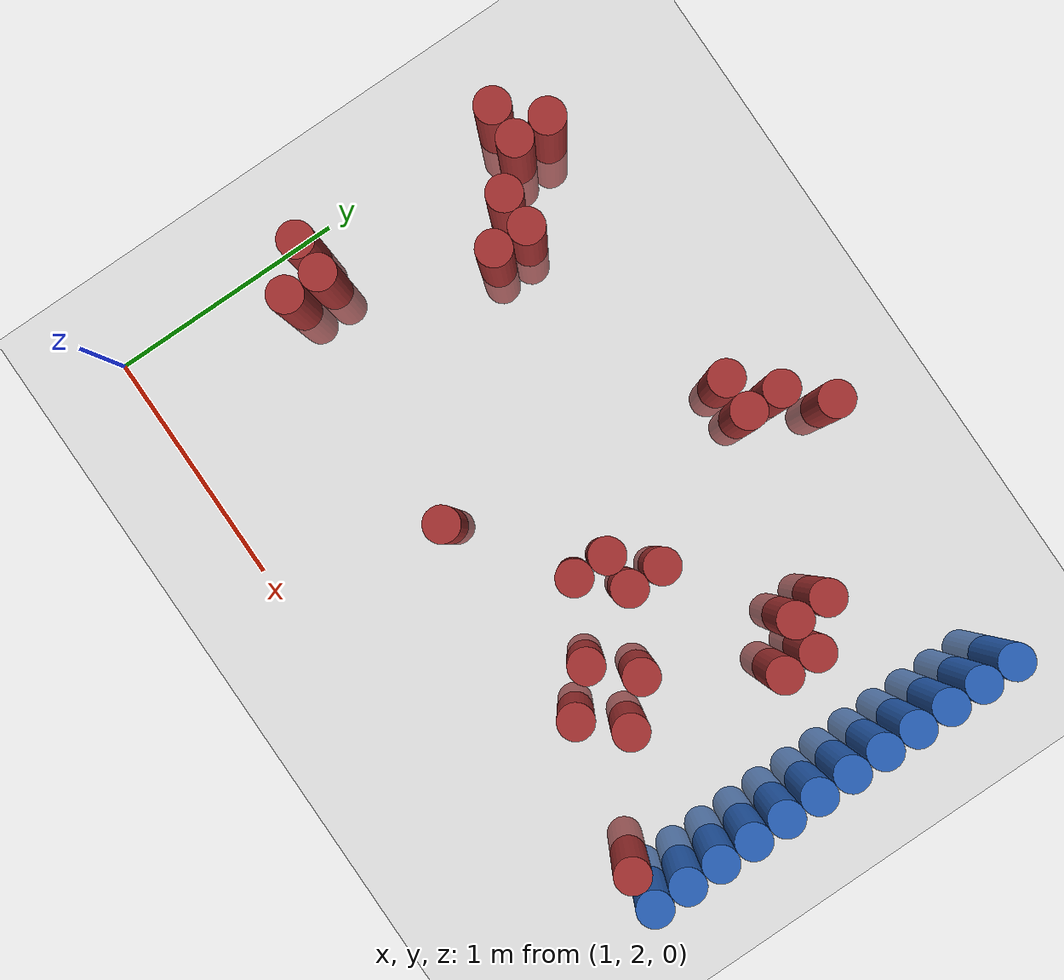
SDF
<sdf version="1.6">
 <world name="default">
  <model name="ground_plane">
   <static>1</static>
   <link name="link">
    <collision name="collision">
     <geometry><plane><normal>0 0 1</normal><size>100 100</size></plane></geometry>
     <surface><friction><ode><mu>100</mu><mu2>50</mu2></ode></friction></surface>
    </collision>
    <visual name="visual">
     <cast_shadows>0</cast_shadows>
     <geometry><plane><normal>0 0 1</normal><size>100 100</size></plane></geometry>
     <material>
      <script><uri>file://media/materials/scripts/gazebo.material</uri><name>Gazebo/Grey</name></script>
     </material>
    </visual>
   </link>
  </model>
  <model name="unit_cylinder_148">
   <static>1</static>
   <pose>3.925000 2.575000 0.000000 0.000000 0.000000 0.000000</pose>
   <link name="link">
    <inertial>
     <mass>1</mass>
     <inertia><ixx>0.145833</ixx><ixy>0</ixy><ixz>0</ixz><iyy>0.145833</iyy><iyz>0</iyz><izz>0.125</izz></inertia>
    </inertial>
    <collision name="collision">
     <geometry><cylinder><radius>0.075000</radius><length>1.5</length></cylinder></geometry>
    </collision>
    <visual name="visual">
     <geometry><cylinder><radius>0.075000</radius><length>1.5</length></cylinder></geometry>
     <material>
      <ambient>0.152000 0.379000 0.720000 1</ambient>
      <diffuse>0.152000 0.379000 0.720000 1</diffuse>
     </material>
     <material>
      <script><name>Gazebo/Grey</name><uri>file://media/materials/scripts/gazebo.material</uri></script>
     </material>
    </visual>
   </link>
  </model>
  <model name="unit_cylinder_150">
   <static>1</static>
   <pose>3.925000 2.725000 0.000000 0.000000 0.000000 0.000000</pose>
   <link name="link">
    <inertial>
     <mass>1</mass>
     <inertia><ixx>0.145833</ixx><ixy>0</ixy><ixz>0</ixz><iyy>0.145833</iyy><iyz>0</iyz><izz>0.125</izz></inertia>
    </inertial>
    <collision name="collision">
     <geometry><cylinder><radius>0.075000</radius><length>1.5</length></cylinder></geometry>
    </collision>
    <visual name="visual">
     <geometry><cylinder><radius>0.075000</radius><length>1.5</length></cylinder></geometry>
     <material>
      <ambient>0.152000 0.379000 0.720000 1</ambient>
      <diffuse>0.152000 0.379000 0.720000 1</diffuse>
     </material>
     <material>
      <script><name>Gazebo/Grey</name><uri>file://media/materials/scripts/gazebo.material</uri></script>
     </material>
    </visual>
   </link>
  </model>
  <model name="unit_cylinder_152">
   <static>1</static>
   <pose>3.925000 2.875000 0.000000 0.000000 0.000000 0.000000</pose>
   <link name="link">
    <inertial>
     <mass>1</mass>
     <inertia><ixx>0.145833</ixx><ixy>0</ixy><ixz>0</ixz><iyy>0.145833</iyy><iyz>0</iyz><izz>0.125</izz></inertia>
    </inertial>
    <collision name="collision">
     <geometry><cylinder><radius>0.075000</radius><length>1.5</length></cylinder></geometry>
    </collision>
    <visual name="visual">
     <geometry><cylinder><radius>0.075000</radius><length>1.5</length></cylinder></geometry>
     <material>
      <ambient>0.152000 0.379000 0.720000 1</ambient>
      <diffuse>0.152000 0.379000 0.720000 1</diffuse>
     </material>
     <material>
      <script><name>Gazebo/Grey</name><uri>file://media/materials/scripts/gazebo.material</uri></script>
     </material>
    </visual>
   </link>
  </model>
  <model name="unit_cylinder_154">
   <static>1</static>
   <pose>3.925000 3.025000 0.000000 0.000000 0.000000 0.000000</pose>
   <link name="link">
    <inertial>
     <mass>1</mass>
     <inertia><ixx>0.145833</ixx><ixy>0</ixy><ixz>0</ixz><iyy>0.145833</iyy><iyz>0</iyz><izz>0.125</izz></inertia>
    </inertial>
    <collision name="collision">
     <geometry><cylinder><radius>0.075000</radius><length>1.5</length></cylinder></geometry>
    </collision>
    <visual name="visual">
     <geometry><cylinder><radius>0.075000</radius><length>1.5</length></cylinder></geometry>
     <material>
      <ambient>0.152000 0.379000 0.720000 1</ambient>
      <diffuse>0.152000 0.379000 0.720000 1</diffuse>
     </material>
     <material>
      <script><name>Gazebo/Grey</name><uri>file://media/materials/scripts/gazebo.material</uri></script>
     </material>
    </visual>
   </link>
  </model>
  <model name="unit_cylinder_156">
   <static>1</static>
   <pose>3.925000 3.175000 0.000000 0.000000 0.000000 0.000000</pose>
   <link name="link">
    <inertial>
     <mass>1</mass>
     <inertia><ixx>0.145833</ixx><ixy>0</ixy><ixz>0</ixz><iyy>0.145833</iyy><iyz>0</iyz><izz>0.125</izz></inertia>
    </inertial>
    <collision name="collision">
     <geometry><cylinder><radius>0.075000</radius><length>1.5</length></cylinder></geometry>
    </collision>
    <visual name="visual">
     <geometry><cylinder><radius>0.075000</radius><length>1.5</length></cylinder></geometry>
     <material>
      <ambient>0.152000 0.379000 0.720000 1</ambient>
      <diffuse>0.152000 0.379000 0.720000 1</diffuse>
     </material>
     <material>
      <script><name>Gazebo/Grey</name><uri>file://media/materials/scripts/gazebo.material</uri></script>
     </material>
    </visual>
   </link>
  </model>
  <model name="unit_cylinder_158">
   <static>1</static>
   <pose>3.925000 3.325000 0.000000 0.000000 0.000000 0.000000</pose>
   <link name="link">
    <inertial>
     <mass>1</mass>
     <inertia><ixx>0.145833</ixx><ixy>0</ixy><ixz>0</ixz><iyy>0.145833</iyy><iyz>0</iyz><izz>0.125</izz></inertia>
    </inertial>
    <collision name="collision">
     <geometry><cylinder><radius>0.075000</radius><length>1.5</length></cylinder></geometry>
    </collision>
    <visual name="visual">
     <geometry><cylinder><radius>0.075000</radius><length>1.5</length></cylinder></geometry>
     <material>
      <ambient>0.152000 0.379000 0.720000 1</ambient>
      <diffuse>0.152000 0.379000 0.720000 1</diffuse>
     </material>
     <material>
      <script><name>Gazebo/Grey</name><uri>file://media/materials/scripts/gazebo.material</uri></script>
     </material>
    </visual>
   </link>
  </model>
  <model name="unit_cylinder_160">
   <static>1</static>
   <pose>3.925000 3.475000 0.000000 0.000000 0.000000 0.000000</pose>
   <link name="link">
    <inertial>
     <mass>1</mass>
     <inertia><ixx>0.145833</ixx><ixy>0</ixy><ixz>0</ixz><iyy>0.145833</iyy><iyz>0</iyz><izz>0.125</izz></inertia>
    </inertial>
    <collision name="collision">
     <geometry><cylinder><radius>0.075000</radius><length>1.5</length></cylinder></geometry>
    </collision>
    <visual name="visual">
     <geometry><cylinder><radius>0.075000</radius><length>1.5</length></cylinder></geometry>
     <material>
      <ambient>0.152000 0.379000 0.720000 1</ambient>
      <diffuse>0.152000 0.379000 0.720000 1</diffuse>
     </material>
     <material>
      <script><name>Gazebo/Grey</name><uri>file://media/materials/scripts/gazebo.material</uri></script>
     </material>
    </visual>
   </link>
  </model>
  <model name="unit_cylinder_162">
   <static>1</static>
   <pose>3.925000 3.625000 0.000000 0.000000 0.000000 0.000000</pose>
   <link name="link">
    <inertial>
     <mass>1</mass>
     <inertia><ixx>0.145833</ixx><ixy>0</ixy><ixz>0</ixz><iyy>0.145833</iyy><iyz>0</iyz><izz>0.125</izz></inertia>
    </inertial>
    <collision name="collision">
     <geometry><cylinder><radius>0.075000</radius><length>1.5</length></cylinder></geometry>
    </collision>
    <visual name="visual">
     <geometry><cylinder><radius>0.075000</radius><length>1.5</length></cylinder></geometry>
     <material>
      <ambient>0.152000 0.379000 0.720000 1</ambient>
      <diffuse>0.152000 0.379000 0.720000 1</diffuse>
     </material>
     <material>
      <script><name>Gazebo/Grey</name><uri>file://media/materials/scripts/gazebo.material</uri></script>
     </material>
    </visual>
   </link>
  </model>
  <model name="unit_cylinder_164">
   <static>1</static>
   <pose>3.925000 3.775000 0.000000 0.000000 0.000000 0.000000</pose>
   <link name="link">
    <inertial>
     <mass>1</mass>
     <inertia><ixx>0.145833</ixx><ixy>0</ixy><ixz>0</ixz><iyy>0.145833</iyy><iyz>0</iyz><izz>0.125</izz></inertia>
    </inertial>
    <collision name="collision">
     <geometry><cylinder><radius>0.075000</radius><length>1.5</length></cylinder></geometry>
    </collision>
    <visual name="visual">
     <geometry><cylinder><radius>0.075000</radius><length>1.5</length></cylinder></geometry>
     <material>
      <ambient>0.152000 0.379000 0.720000 1</ambient>
      <diffuse>0.152000 0.379000 0.720000 1</diffuse>
     </material>
     <material>
      <script><name>Gazebo/Grey</name><uri>file://media/materials/scripts/gazebo.material</uri></script>
     </material>
    </visual>
   </link>
  </model>
  <model name="unit_cylinder_166">
   <static>1</static>
   <pose>3.925000 3.925000 0.000000 0.000000 0.000000 0.000000</pose>
   <link name="link">
    <inertial>
     <mass>1</mass>
     <inertia><ixx>0.145833</ixx><ixy>0</ixy><ixz>0</ixz><iyy>0.145833</iyy><iyz>0</iyz><izz>0.125</izz></inertia>
    </inertial>
    <collision name="collision">
     <geometry><cylinder><radius>0.075000</radius><length>1.5</length></cylinder></geometry>
    </collision>
    <visual name="visual">
     <geometry><cylinder><radius>0.075000</radius><length>1.5</length></cylinder></geometry>
     <material>
      <ambient>0.152000 0.379000 0.720000 1</ambient>
      <diffuse>0.152000 0.379000 0.720000 1</diffuse>
     </material>
     <material>
      <script><name>Gazebo/Grey</name><uri>file://media/materials/scripts/gazebo.material</uri></script>
     </material>
    </visual>
   </link>
  </model>
  <model name="unit_cylinder_168">
   <static>1</static>
   <pose>3.925000 4.075000 0.000000 0.000000 0.000000 0.000000</pose>
   <link name="link">
    <inertial>
     <mass>1</mass>
     <inertia><ixx>0.145833</ixx><ixy>0</ixy><ixz>0</ixz><iyy>0.145833</iyy><iyz>0</iyz><izz>0.125</izz></inertia>
    </inertial>
    <collision name="collision">
     <geometry><cylinder><radius>0.075000</radius><length>1.5</length></cylinder></geometry>
    </collision>
    <visual name="visual">
     <geometry><cylinder><radius>0.075000</radius><length>1.5</length></cylinder></geometry>
     <material>
      <ambient>0.152000 0.379000 0.720000 1</ambient>
      <diffuse>0.152000 0.379000 0.720000 1</diffuse>
     </material>
     <material>
      <script><name>Gazebo/Grey</name><uri>file://media/materials/scripts/gazebo.material</uri></script>
     </material>
    </visual>
   </link>
  </model>
  <model name="unit_cylinder_170">
   <static>1</static>
   <pose>3.925000 4.225000 0.000000 0.000000 0.000000 0.000000</pose>
   <link name="link">
    <inertial>
     <mass>1</mass>
     <inertia><ixx>0.145833</ixx><ixy>0</ixy><ixz>0</ixz><iyy>0.145833</iyy><iyz>0</iyz><izz>0.125</izz></inertia>
    </inertial>
    <collision name="collision">
     <geometry><cylinder><radius>0.075000</radius><length>1.5</length></cylinder></geometry>
    </collision>
    <visual name="visual">
     <geometry><cylinder><radius>0.075000</radius><length>1.5</length></cylinder></geometry>
     <material>
      <ambient>0.152000 0.379000 0.720000 1</ambient>
      <diffuse>0.152000 0.379000 0.720000 1</diffuse>
     </material>
     <material>
      <script><name>Gazebo/Grey</name><uri>file://media/materials/scripts/gazebo.material</uri></script>
     </material>
    </visual>
   </link>
  </model>
  <model name="unit_cylinder_411">
   <static>1</static>
   <pose>1.075000 2.875000 0.000000 0.000000 0.000000 0.000000</pose>
   <link name="link">
    <inertial>
     <mass>1</mass>
     <inertia><ixx>0.145833</ixx><ixy>0</ixy><ixz>0</ixz><iyy>0.145833</iyy><iyz>0</iyz><izz>0.125</izz></inertia>
    </inertial>
    <collision name="collision">
     <geometry><cylinder><radius>0.075000</radius><length>1.5</length></cylinder></geometry>
    </collision>
    <visual name="visual">
     <geometry><cylinder><radius>0.075000</radius><length>1.5</length></cylinder></geometry>
     <material>
      <ambient>0.648000 0.192000 0.192000 1</ambient>
      <diffuse>0.648000 0.192000 0.192000 1</diffuse>
     </material>
     <material>
      <script><name>Gazebo/Grey</name><uri>file://media/materials/scripts/gazebo.material</uri></script>
     </material>
    </visual>
   </link>
  </model>
  <model name="unit_cylinder_412">
   <static>1</static>
   <pose>1.075000 3.775000 0.000000 0.000000 0.000000 0.000000</pose>
   <link name="link">
    <inertial>
     <mass>1</mass>
     <inertia><ixx>0.145833</ixx><ixy>0</ixy><ixz>0</ixz><iyy>0.145833</iyy><iyz>0</iyz><izz>0.125</izz></inertia>
    </inertial>
    <collision name="collision">
     <geometry><cylinder><radius>0.075000</radius><length>1.5</length></cylinder></geometry>
    </collision>
    <visual name="visual">
     <geometry><cylinder><radius>0.075000</radius><length>1.5</length></cylinder></geometry>
     <material>
      <ambient>0.648000 0.192000 0.192000 1</ambient>
      <diffuse>0.648000 0.192000 0.192000 1</diffuse>
     </material>
     <material>
      <script><name>Gazebo/Grey</name><uri>file://media/materials/scripts/gazebo.material</uri></script>
     </material>
    </visual>
   </link>
  </model>
  <model name="unit_cylinder_421">
   <static>1</static>
   <pose>1.225000 2.725000 0.000000 0.000000 0.000000 0.000000</pose>
   <link name="link">
    <inertial>
     <mass>1</mass>
     <inertia><ixx>0.145833</ixx><ixy>0</ixy><ixz>0</ixz><iyy>0.145833</iyy><iyz>0</iyz><izz>0.125</izz></inertia>
    </inertial>
    <collision name="collision">
     <geometry><cylinder><radius>0.075000</radius><length>1.5</length></cylinder></geometry>
    </collision>
    <visual name="visual">
     <geometry><cylinder><radius>0.075000</radius><length>1.5</length></cylinder></geometry>
     <material>
      <ambient>0.648000 0.192000 0.192000 1</ambient>
      <diffuse>0.648000 0.192000 0.192000 1</diffuse>
     </material>
     <material>
      <script><name>Gazebo/Grey</name><uri>file://media/materials/scripts/gazebo.material</uri></script>
     </material>
    </visual>
   </link>
  </model>
  <model name="unit_cylinder_422">
   <static>1</static>
   <pose>1.225000 2.875000 0.000000 0.000000 0.000000 0.000000</pose>
   <link name="link">
    <inertial>
     <mass>1</mass>
     <inertia><ixx>0.145833</ixx><ixy>0</ixy><ixz>0</ixz><iyy>0.145833</iyy><iyz>0</iyz><izz>0.125</izz></inertia>
    </inertial>
    <collision name="collision">
     <geometry><cylinder><radius>0.075000</radius><length>1.5</length></cylinder></geometry>
    </collision>
    <visual name="visual">
     <geometry><cylinder><radius>0.075000</radius><length>1.5</length></cylinder></geometry>
     <material>
      <ambient>0.648000 0.192000 0.192000 1</ambient>
      <diffuse>0.648000 0.192000 0.192000 1</diffuse>
     </material>
     <material>
      <script><name>Gazebo/Grey</name><uri>file://media/materials/scripts/gazebo.material</uri></script>
     </material>
    </visual>
   </link>
  </model>
  <model name="unit_cylinder_423">
   <static>1</static>
   <pose>1.225000 3.775000 0.000000 0.000000 0.000000 0.000000</pose>
   <link name="link">
    <inertial>
     <mass>1</mass>
     <inertia><ixx>0.145833</ixx><ixy>0</ixy><ixz>0</ixz><iyy>0.145833</iyy><iyz>0</iyz><izz>0.125</izz></inertia>
    </inertial>
    <collision name="collision">
     <geometry><cylinder><radius>0.075000</radius><length>1.5</length></cylinder></geometry>
    </collision>
    <visual name="visual">
     <geometry><cylinder><radius>0.075000</radius><length>1.5</length></cylinder></geometry>
     <material>
      <ambient>0.648000 0.192000 0.192000 1</ambient>
      <diffuse>0.648000 0.192000 0.192000 1</diffuse>
     </material>
     <material>
      <script><name>Gazebo/Grey</name><uri>file://media/materials/scripts/gazebo.material</uri></script>
     </material>
    </visual>
   </link>
  </model>
  <model name="unit_cylinder_424">
   <static>1</static>
   <pose>1.225000 3.925000 0.000000 0.000000 0.000000 0.000000</pose>
   <link name="link">
    <inertial>
     <mass>1</mass>
     <inertia><ixx>0.145833</ixx><ixy>0</ixy><ixz>0</ixz><iyy>0.145833</iyy><iyz>0</iyz><izz>0.125</izz></inertia>
    </inertial>
    <collision name="collision">
     <geometry><cylinder><radius>0.075000</radius><length>1.5</length></cylinder></geometry>
    </collision>
    <visual name="visual">
     <geometry><cylinder><radius>0.075000</radius><length>1.5</length></cylinder></geometry>
     <material>
      <ambient>0.648000 0.192000 0.192000 1</ambient>
      <diffuse>0.648000 0.192000 0.192000 1</diffuse>
     </material>
     <material>
      <script><name>Gazebo/Grey</name><uri>file://media/materials/scripts/gazebo.material</uri></script>
     </material>
    </visual>
   </link>
  </model>
  <model name="unit_cylinder_430">
   <static>1</static>
   <pose>1.375000 3.625000 0.000000 0.000000 0.000000 0.000000</pose>
   <link name="link">
    <inertial>
     <mass>1</mass>
     <inertia><ixx>0.145833</ixx><ixy>0</ixy><ixz>0</ixz><iyy>0.145833</iyy><iyz>0</iyz><izz>0.125</izz></inertia>
    </inertial>
    <collision name="collision">
     <geometry><cylinder><radius>0.075000</radius><length>1.5</length></cylinder></geometry>
    </collision>
    <visual name="visual">
     <geometry><cylinder><radius>0.075000</radius><length>1.5</length></cylinder></geometry>
     <material>
      <ambient>0.648000 0.192000 0.192000 1</ambient>
      <diffuse>0.648000 0.192000 0.192000 1</diffuse>
     </material>
     <material>
      <script><name>Gazebo/Grey</name><uri>file://media/materials/scripts/gazebo.material</uri></script>
     </material>
    </visual>
   </link>
  </model>
  <model name="unit_cylinder_434">
   <static>1</static>
   <pose>1.525000 3.475000 0.000000 0.000000 0.000000 0.000000</pose>
   <link name="link">
    <inertial>
     <mass>1</mass>
     <inertia><ixx>0.145833</ixx><ixy>0</ixy><ixz>0</ixz><iyy>0.145833</iyy><iyz>0</iyz><izz>0.125</izz></inertia>
    </inertial>
    <collision name="collision">
     <geometry><cylinder><radius>0.075000</radius><length>1.5</length></cylinder></geometry>
    </collision>
    <visual name="visual">
     <geometry><cylinder><radius>0.075000</radius><length>1.5</length></cylinder></geometry>
     <material>
      <ambient>0.648000 0.192000 0.192000 1</ambient>
      <diffuse>0.648000 0.192000 0.192000 1</diffuse>
     </material>
     <material>
      <script><name>Gazebo/Grey</name><uri>file://media/materials/scripts/gazebo.material</uri></script>
     </material>
    </visual>
   </link>
  </model>
  <model name="unit_cylinder_435">
   <static>1</static>
   <pose>1.525000 3.625000 0.000000 0.000000 0.000000 0.000000</pose>
   <link name="link">
    <inertial>
     <mass>1</mass>
     <inertia><ixx>0.145833</ixx><ixy>0</ixy><ixz>0</ixz><iyy>0.145833</iyy><iyz>0</iyz><izz>0.125</izz></inertia>
    </inertial>
    <collision name="collision">
     <geometry><cylinder><radius>0.075000</radius><length>1.5</length></cylinder></geometry>
    </collision>
    <visual name="visual">
     <geometry><cylinder><radius>0.075000</radius><length>1.5</length></cylinder></geometry>
     <material>
      <ambient>0.648000 0.192000 0.192000 1</ambient>
      <diffuse>0.648000 0.192000 0.192000 1</diffuse>
     </material>
     <material>
      <script><name>Gazebo/Grey</name><uri>file://media/materials/scripts/gazebo.material</uri></script>
     </material>
    </visual>
   </link>
  </model>
  <model name="unit_cylinder_446">
   <static>1</static>
   <pose>2.275000 2.725000 0.000000 0.000000 0.000000 0.000000</pose>
   <link name="link">
    <inertial>
     <mass>1</mass>
     <inertia><ixx>0.145833</ixx><ixy>0</ixy><ixz>0</ixz><iyy>0.145833</iyy><iyz>0</iyz><izz>0.125</izz></inertia>
    </inertial>
    <collision name="collision">
     <geometry><cylinder><radius>0.075000</radius><length>1.5</length></cylinder></geometry>
    </collision>
    <visual name="visual">
     <geometry><cylinder><radius>0.075000</radius><length>1.5</length></cylinder></geometry>
     <material>
      <ambient>0.648000 0.192000 0.192000 1</ambient>
      <diffuse>0.648000 0.192000 0.192000 1</diffuse>
     </material>
     <material>
      <script><name>Gazebo/Grey</name><uri>file://media/materials/scripts/gazebo.material</uri></script>
     </material>
    </visual>
   </link>
  </model>
  <model name="unit_cylinder_448">
   <static>1</static>
   <pose>2.425000 3.925000 0.000000 0.000000 0.000000 0.000000</pose>
   <link name="link">
    <inertial>
     <mass>1</mass>
     <inertia><ixx>0.145833</ixx><ixy>0</ixy><ixz>0</ixz><iyy>0.145833</iyy><iyz>0</iyz><izz>0.125</izz></inertia>
    </inertial>
    <collision name="collision">
     <geometry><cylinder><radius>0.075000</radius><length>1.5</length></cylinder></geometry>
    </collision>
    <visual name="visual">
     <geometry><cylinder><radius>0.075000</radius><length>1.5</length></cylinder></geometry>
     <material>
      <ambient>0.648000 0.192000 0.192000 1</ambient>
      <diffuse>0.648000 0.192000 0.192000 1</diffuse>
     </material>
     <material>
      <script><name>Gazebo/Grey</name><uri>file://media/materials/scripts/gazebo.material</uri></script>
     </material>
    </visual>
   </link>
  </model>
  <model name="unit_cylinder_453">
   <static>1</static>
   <pose>2.575000 3.925000 0.000000 0.000000 0.000000 0.000000</pose>
   <link name="link">
    <inertial>
     <mass>1</mass>
     <inertia><ixx>0.145833</ixx><ixy>0</ixy><ixz>0</ixz><iyy>0.145833</iyy><iyz>0</iyz><izz>0.125</izz></inertia>
    </inertial>
    <collision name="collision">
     <geometry><cylinder><radius>0.075000</radius><length>1.5</length></cylinder></geometry>
    </collision>
    <visual name="visual">
     <geometry><cylinder><radius>0.075000</radius><length>1.5</length></cylinder></geometry>
     <material>
      <ambient>0.648000 0.192000 0.192000 1</ambient>
      <diffuse>0.648000 0.192000 0.192000 1</diffuse>
     </material>
     <material>
      <script><name>Gazebo/Grey</name><uri>file://media/materials/scripts/gazebo.material</uri></script>
     </material>
    </visual>
   </link>
  </model>
  <model name="unit_cylinder_454">
   <static>1</static>
   <pose>2.575000 4.075000 0.000000 0.000000 0.000000 0.000000</pose>
   <link name="link">
    <inertial>
     <mass>1</mass>
     <inertia><ixx>0.145833</ixx><ixy>0</ixy><ixz>0</ixz><iyy>0.145833</iyy><iyz>0</iyz><izz>0.125</izz></inertia>
    </inertial>
    <collision name="collision">
     <geometry><cylinder><radius>0.075000</radius><length>1.5</length></cylinder></geometry>
    </collision>
    <visual name="visual">
     <geometry><cylinder><radius>0.075000</radius><length>1.5</length></cylinder></geometry>
     <material>
      <ambient>0.648000 0.192000 0.192000 1</ambient>
      <diffuse>0.648000 0.192000 0.192000 1</diffuse>
     </material>
     <material>
      <script><name>Gazebo/Grey</name><uri>file://media/materials/scripts/gazebo.material</uri></script>
     </material>
    </visual>
   </link>
  </model>
  <model name="unit_cylinder_458">
   <static>1</static>
   <pose>2.725000 3.025000 0.000000 0.000000 0.000000 0.000000</pose>
   <link name="link">
    <inertial>
     <mass>1</mass>
     <inertia><ixx>0.145833</ixx><ixy>0</ixy><ixz>0</ixz><iyy>0.145833</iyy><iyz>0</iyz><izz>0.125</izz></inertia>
    </inertial>
    <collision name="collision">
     <geometry><cylinder><radius>0.075000</radius><length>1.5</length></cylinder></geometry>
    </collision>
    <visual name="visual">
     <geometry><cylinder><radius>0.075000</radius><length>1.5</length></cylinder></geometry>
     <material>
      <ambient>0.648000 0.192000 0.192000 1</ambient>
      <diffuse>0.648000 0.192000 0.192000 1</diffuse>
     </material>
     <material>
      <script><name>Gazebo/Grey</name><uri>file://media/materials/scripts/gazebo.material</uri></script>
     </material>
    </visual>
   </link>
  </model>
  <model name="unit_cylinder_459">
   <static>1</static>
   <pose>2.725000 3.175000 0.000000 0.000000 0.000000 0.000000</pose>
   <link name="link">
    <inertial>
     <mass>1</mass>
     <inertia><ixx>0.145833</ixx><ixy>0</ixy><ixz>0</ixz><iyy>0.145833</iyy><iyz>0</iyz><izz>0.125</izz></inertia>
    </inertial>
    <collision name="collision">
     <geometry><cylinder><radius>0.075000</radius><length>1.5</length></cylinder></geometry>
    </collision>
    <visual name="visual">
     <geometry><cylinder><radius>0.075000</radius><length>1.5</length></cylinder></geometry>
     <material>
      <ambient>0.648000 0.192000 0.192000 1</ambient>
      <diffuse>0.648000 0.192000 0.192000 1</diffuse>
     </material>
     <material>
      <script><name>Gazebo/Grey</name><uri>file://media/materials/scripts/gazebo.material</uri></script>
     </material>
    </visual>
   </link>
  </model>
  <model name="unit_cylinder_460">
   <static>1</static>
   <pose>2.725000 4.225000 0.000000 0.000000 0.000000 0.000000</pose>
   <link name="link">
    <inertial>
     <mass>1</mass>
     <inertia><ixx>0.145833</ixx><ixy>0</ixy><ixz>0</ixz><iyy>0.145833</iyy><iyz>0</iyz><izz>0.125</izz></inertia>
    </inertial>
    <collision name="collision">
     <geometry><cylinder><radius>0.075000</radius><length>1.5</length></cylinder></geometry>
    </collision>
    <visual name="visual">
     <geometry><cylinder><radius>0.075000</radius><length>1.5</length></cylinder></geometry>
     <material>
      <ambient>0.648000 0.192000 0.192000 1</ambient>
      <diffuse>0.648000 0.192000 0.192000 1</diffuse>
     </material>
     <material>
      <script><name>Gazebo/Grey</name><uri>file://media/materials/scripts/gazebo.material</uri></script>
     </material>
    </visual>
   </link>
  </model>
  <model name="unit_cylinder_464">
   <static>1</static>
   <pose>2.875000 3.175000 0.000000 0.000000 0.000000 0.000000</pose>
   <link name="link">
    <inertial>
     <mass>1</mass>
     <inertia><ixx>0.145833</ixx><ixy>0</ixy><ixz>0</ixz><iyy>0.145833</iyy><iyz>0</iyz><izz>0.125</izz></inertia>
    </inertial>
    <collision name="collision">
     <geometry><cylinder><radius>0.075000</radius><length>1.5</length></cylinder></geometry>
    </collision>
    <visual name="visual">
     <geometry><cylinder><radius>0.075000</radius><length>1.5</length></cylinder></geometry>
     <material>
      <ambient>0.648000 0.192000 0.192000 1</ambient>
      <diffuse>0.648000 0.192000 0.192000 1</diffuse>
     </material>
     <material>
      <script><name>Gazebo/Grey</name><uri>file://media/materials/scripts/gazebo.material</uri></script>
     </material>
    </visual>
   </link>
  </model>
  <model name="unit_cylinder_465">
   <static>1</static>
   <pose>2.875000 3.325000 0.000000 0.000000 0.000000 0.000000</pose>
   <link name="link">
    <inertial>
     <mass>1</mass>
     <inertia><ixx>0.145833</ixx><ixy>0</ixy><ixz>0</ixz><iyy>0.145833</iyy><iyz>0</iyz><izz>0.125</izz></inertia>
    </inertial>
    <collision name="collision">
     <geometry><cylinder><radius>0.075000</radius><length>1.5</length></cylinder></geometry>
    </collision>
    <visual name="visual">
     <geometry><cylinder><radius>0.075000</radius><length>1.5</length></cylinder></geometry>
     <material>
      <ambient>0.648000 0.192000 0.192000 1</ambient>
      <diffuse>0.648000 0.192000 0.192000 1</diffuse>
     </material>
     <material>
      <script><name>Gazebo/Grey</name><uri>file://media/materials/scripts/gazebo.material</uri></script>
     </material>
    </visual>
   </link>
  </model>
  <model name="unit_cylinder_469">
   <static>1</static>
   <pose>3.025000 2.875000 0.000000 0.000000 0.000000 0.000000</pose>
   <link name="link">
    <inertial>
     <mass>1</mass>
     <inertia><ixx>0.145833</ixx><ixy>0</ixy><ixz>0</ixz><iyy>0.145833</iyy><iyz>0</iyz><izz>0.125</izz></inertia>
    </inertial>
    <collision name="collision">
     <geometry><cylinder><radius>0.075000</radius><length>1.5</length></cylinder></geometry>
    </collision>
    <visual name="visual">
     <geometry><cylinder><radius>0.075000</radius><length>1.5</length></cylinder></geometry>
     <material>
      <ambient>0.648000 0.192000 0.192000 1</ambient>
      <diffuse>0.648000 0.192000 0.192000 1</diffuse>
     </material>
     <material>
      <script><name>Gazebo/Grey</name><uri>file://media/materials/scripts/gazebo.material</uri></script>
     </material>
    </visual>
   </link>
  </model>
  <model name="unit_cylinder_471">
   <static>1</static>
   <pose>3.175000 2.725000 0.000000 0.000000 0.000000 0.000000</pose>
   <link name="link">
    <inertial>
     <mass>1</mass>
     <inertia><ixx>0.145833</ixx><ixy>0</ixy><ixz>0</ixz><iyy>0.145833</iyy><iyz>0</iyz><izz>0.125</izz></inertia>
    </inertial>
    <collision name="collision">
     <geometry><cylinder><radius>0.075000</radius><length>1.5</length></cylinder></geometry>
    </collision>
    <visual name="visual">
     <geometry><cylinder><radius>0.075000</radius><length>1.5</length></cylinder></geometry>
     <material>
      <ambient>0.648000 0.192000 0.192000 1</ambient>
      <diffuse>0.648000 0.192000 0.192000 1</diffuse>
     </material>
     <material>
      <script><name>Gazebo/Grey</name><uri>file://media/materials/scripts/gazebo.material</uri></script>
     </material>
    </visual>
   </link>
  </model>
  <model name="unit_cylinder_472">
   <static>1</static>
   <pose>3.175000 3.025000 0.000000 0.000000 0.000000 0.000000</pose>
   <link name="link">
    <inertial>
     <mass>1</mass>
     <inertia><ixx>0.145833</ixx><ixy>0</ixy><ixz>0</ixz><iyy>0.145833</iyy><iyz>0</iyz><izz>0.125</izz></inertia>
    </inertial>
    <collision name="collision">
     <geometry><cylinder><radius>0.075000</radius><length>1.5</length></cylinder></geometry>
    </collision>
    <visual name="visual">
     <geometry><cylinder><radius>0.075000</radius><length>1.5</length></cylinder></geometry>
     <material>
      <ambient>0.648000 0.192000 0.192000 1</ambient>
      <diffuse>0.648000 0.192000 0.192000 1</diffuse>
     </material>
     <material>
      <script><name>Gazebo/Grey</name><uri>file://media/materials/scripts/gazebo.material</uri></script>
     </material>
    </visual>
   </link>
  </model>
  <model name="unit_cylinder_478">
   <static>1</static>
   <pose>3.325000 2.875000 0.000000 0.000000 0.000000 0.000000</pose>
   <link name="link">
    <inertial>
     <mass>1</mass>
     <inertia><ixx>0.145833</ixx><ixy>0</ixy><ixz>0</ixz><iyy>0.145833</iyy><iyz>0</iyz><izz>0.125</izz></inertia>
    </inertial>
    <collision name="collision">
     <geometry><cylinder><radius>0.075000</radius><length>1.5</length></cylinder></geometry>
    </collision>
    <visual name="visual">
     <geometry><cylinder><radius>0.075000</radius><length>1.5</length></cylinder></geometry>
     <material>
      <ambient>0.648000 0.192000 0.192000 1</ambient>
      <diffuse>0.648000 0.192000 0.192000 1</diffuse>
     </material>
     <material>
      <script><name>Gazebo/Grey</name><uri>file://media/materials/scripts/gazebo.material</uri></script>
     </material>
    </visual>
   </link>
  </model>
  <model name="unit_cylinder_479">
   <static>1</static>
   <pose>3.325000 3.625000 0.000000 0.000000 0.000000 0.000000</pose>
   <link name="link">
    <inertial>
     <mass>1</mass>
     <inertia><ixx>0.145833</ixx><ixy>0</ixy><ixz>0</ixz><iyy>0.145833</iyy><iyz>0</iyz><izz>0.125</izz></inertia>
    </inertial>
    <collision name="collision">
     <geometry><cylinder><radius>0.075000</radius><length>1.5</length></cylinder></geometry>
    </collision>
    <visual name="visual">
     <geometry><cylinder><radius>0.075000</radius><length>1.5</length></cylinder></geometry>
     <material>
      <ambient>0.648000 0.192000 0.192000 1</ambient>
      <diffuse>0.648000 0.192000 0.192000 1</diffuse>
     </material>
     <material>
      <script><name>Gazebo/Grey</name><uri>file://media/materials/scripts/gazebo.material</uri></script>
     </material>
    </visual>
   </link>
  </model>
  <model name="unit_cylinder_480">
   <static>1</static>
   <pose>3.325000 3.775000 0.000000 0.000000 0.000000 0.000000</pose>
   <link name="link">
    <inertial>
     <mass>1</mass>
     <inertia><ixx>0.145833</ixx><ixy>0</ixy><ixz>0</ixz><iyy>0.145833</iyy><iyz>0</iyz><izz>0.125</izz></inertia>
    </inertial>
    <collision name="collision">
     <geometry><cylinder><radius>0.075000</radius><length>1.5</length></cylinder></geometry>
    </collision>
    <visual name="visual">
     <geometry><cylinder><radius>0.075000</radius><length>1.5</length></cylinder></geometry>
     <material>
      <ambient>0.648000 0.192000 0.192000 1</ambient>
      <diffuse>0.648000 0.192000 0.192000 1</diffuse>
     </material>
     <material>
      <script><name>Gazebo/Grey</name><uri>file://media/materials/scripts/gazebo.material</uri></script>
     </material>
    </visual>
   </link>
  </model>
  <model name="unit_cylinder_484">
   <static>1</static>
   <pose>3.475000 3.475000 0.000000 0.000000 0.000000 0.000000</pose>
   <link name="link">
    <inertial>
     <mass>1</mass>
     <inertia><ixx>0.145833</ixx><ixy>0</ixy><ixz>0</ixz><iyy>0.145833</iyy><iyz>0</iyz><izz>0.125</izz></inertia>
    </inertial>
    <collision name="collision">
     <geometry><cylinder><radius>0.075000</radius><length>1.5</length></cylinder></geometry>
    </collision>
    <visual name="visual">
     <geometry><cylinder><radius>0.075000</radius><length>1.5</length></cylinder></geometry>
     <material>
      <ambient>0.648000 0.192000 0.192000 1</ambient>
      <diffuse>0.648000 0.192000 0.192000 1</diffuse>
     </material>
     <material>
      <script><name>Gazebo/Grey</name><uri>file://media/materials/scripts/gazebo.material</uri></script>
     </material>
    </visual>
   </link>
  </model>
  <model name="unit_cylinder_485">
   <static>1</static>
   <pose>3.475000 3.625000 0.000000 0.000000 0.000000 0.000000</pose>
   <link name="link">
    <inertial>
     <mass>1</mass>
     <inertia><ixx>0.145833</ixx><ixy>0</ixy><ixz>0</ixz><iyy>0.145833</iyy><iyz>0</iyz><izz>0.125</izz></inertia>
    </inertial>
    <collision name="collision">
     <geometry><cylinder><radius>0.075000</radius><length>1.5</length></cylinder></geometry>
    </collision>
    <visual name="visual">
     <geometry><cylinder><radius>0.075000</radius><length>1.5</length></cylinder></geometry>
     <material>
      <ambient>0.648000 0.192000 0.192000 1</ambient>
      <diffuse>0.648000 0.192000 0.192000 1</diffuse>
     </material>
     <material>
      <script><name>Gazebo/Grey</name><uri>file://media/materials/scripts/gazebo.material</uri></script>
     </material>
    </visual>
   </link>
  </model>
  <model name="unit_cylinder_509">
   <static>1</static>
   <pose>3.775000 2.575000 0.000000 0.000000 0.000000 0.000000</pose>
   <link name="link">
    <inertial>
     <mass>1</mass>
     <inertia><ixx>0.145833</ixx><ixy>0</ixy><ixz>0</ixz><iyy>0.145833</iyy><iyz>0</iyz><izz>0.125</izz></inertia>
    </inertial>
    <collision name="collision">
     <geometry><cylinder><radius>0.075000</radius><length>1.5</length></cylinder></geometry>
    </collision>
    <visual name="visual">
     <geometry><cylinder><radius>0.075000</radius><length>1.5</length></cylinder></geometry>
     <material>
      <ambient>0.648000 0.192000 0.192000 1</ambient>
      <diffuse>0.648000 0.192000 0.192000 1</diffuse>
     </material>
     <material>
      <script><name>Gazebo/Grey</name><uri>file://media/materials/scripts/gazebo.material</uri></script>
     </material>
    </visual>
   </link>
  </model>
  <model name="unit_cylinder_545">
   <static>1</static>
   <pose>3.925000 2.575000 0.000000 0.000000 0.000000 0.000000</pose>
   <link name="link">
    <inertial>
     <mass>1</mass>
     <inertia><ixx>0.145833</ixx><ixy>0</ixy><ixz>0</ixz><iyy>0.145833</iyy><iyz>0</iyz><izz>0.125</izz></inertia>
    </inertial>
    <collision name="collision">
     <geometry><cylinder><radius>0.075000</radius><length>1.5</length></cylinder></geometry>
    </collision>
    <visual name="visual">
     <geometry><cylinder><radius>0.075000</radius><length>1.5</length></cylinder></geometry>
     <material>
      <ambient>0.152000 0.379000 0.720000 1</ambient>
      <diffuse>0.152000 0.379000 0.720000 1</diffuse>
     </material>
     <material>
      <script><name>Gazebo/Grey</name><uri>file://media/materials/scripts/gazebo.material</uri></script>
     </material>
    </visual>
   </link>
  </model>
  <model name="unit_cylinder_546">
   <static>1</static>
   <pose>3.925000 2.725000 0.000000 0.000000 0.000000 0.000000</pose>
   <link name="link">
    <inertial>
     <mass>1</mass>
     <inertia><ixx>0.145833</ixx><ixy>0</ixy><ixz>0</ixz><iyy>0.145833</iyy><iyz>0</iyz><izz>0.125</izz></inertia>
    </inertial>
    <collision name="collision">
     <geometry><cylinder><radius>0.075000</radius><length>1.5</length></cylinder></geometry>
    </collision>
    <visual name="visual">
     <geometry><cylinder><radius>0.075000</radius><length>1.5</length></cylinder></geometry>
     <material>
      <ambient>0.152000 0.379000 0.720000 1</ambient>
      <diffuse>0.152000 0.379000 0.720000 1</diffuse>
     </material>
     <material>
      <script><name>Gazebo/Grey</name><uri>file://media/materials/scripts/gazebo.material</uri></script>
     </material>
    </visual>
   </link>
  </model>
  <model name="unit_cylinder_547">
   <static>1</static>
   <pose>3.925000 2.875000 0.000000 0.000000 0.000000 0.000000</pose>
   <link name="link">
    <inertial>
     <mass>1</mass>
     <inertia><ixx>0.145833</ixx><ixy>0</ixy><ixz>0</ixz><iyy>0.145833</iyy><iyz>0</iyz><izz>0.125</izz></inertia>
    </inertial>
    <collision name="collision">
     <geometry><cylinder><radius>0.075000</radius><length>1.5</length></cylinder></geometry>
    </collision>
    <visual name="visual">
     <geometry><cylinder><radius>0.075000</radius><length>1.5</length></cylinder></geometry>
     <material>
      <ambient>0.152000 0.379000 0.720000 1</ambient>
      <diffuse>0.152000 0.379000 0.720000 1</diffuse>
     </material>
     <material>
      <script><name>Gazebo/Grey</name><uri>file://media/materials/scripts/gazebo.material</uri></script>
     </material>
    </visual>
   </link>
  </model>
  <model name="unit_cylinder_548">
   <static>1</static>
   <pose>3.925000 3.025000 0.000000 0.000000 0.000000 0.000000</pose>
   <link name="link">
    <inertial>
     <mass>1</mass>
     <inertia><ixx>0.145833</ixx><ixy>0</ixy><ixz>0</ixz><iyy>0.145833</iyy><iyz>0</iyz><izz>0.125</izz></inertia>
    </inertial>
    <collision name="collision">
     <geometry><cylinder><radius>0.075000</radius><length>1.5</length></cylinder></geometry>
    </collision>
    <visual name="visual">
     <geometry><cylinder><radius>0.075000</radius><length>1.5</length></cylinder></geometry>
     <material>
      <ambient>0.152000 0.379000 0.720000 1</ambient>
      <diffuse>0.152000 0.379000 0.720000 1</diffuse>
     </material>
     <material>
      <script><name>Gazebo/Grey</name><uri>file://media/materials/scripts/gazebo.material</uri></script>
     </material>
    </visual>
   </link>
  </model>
  <model name="unit_cylinder_549">
   <static>1</static>
   <pose>3.925000 3.175000 0.000000 0.000000 0.000000 0.000000</pose>
   <link name="link">
    <inertial>
     <mass>1</mass>
     <inertia><ixx>0.145833</ixx><ixy>0</ixy><ixz>0</ixz><iyy>0.145833</iyy><iyz>0</iyz><izz>0.125</izz></inertia>
    </inertial>
    <collision name="collision">
     <geometry><cylinder><radius>0.075000</radius><length>1.5</length></cylinder></geometry>
    </collision>
    <visual name="visual">
     <geometry><cylinder><radius>0.075000</radius><length>1.5</length></cylinder></geometry>
     <material>
      <ambient>0.152000 0.379000 0.720000 1</ambient>
      <diffuse>0.152000 0.379000 0.720000 1</diffuse>
     </material>
     <material>
      <script><name>Gazebo/Grey</name><uri>file://media/materials/scripts/gazebo.material</uri></script>
     </material>
    </visual>
   </link>
  </model>
  <model name="unit_cylinder_550">
   <static>1</static>
   <pose>3.925000 3.325000 0.000000 0.000000 0.000000 0.000000</pose>
   <link name="link">
    <inertial>
     <mass>1</mass>
     <inertia><ixx>0.145833</ixx><ixy>0</ixy><ixz>0</ixz><iyy>0.145833</iyy><iyz>0</iyz><izz>0.125</izz></inertia>
    </inertial>
    <collision name="collision">
     <geometry><cylinder><radius>0.075000</radius><length>1.5</length></cylinder></geometry>
    </collision>
    <visual name="visual">
     <geometry><cylinder><radius>0.075000</radius><length>1.5</length></cylinder></geometry>
     <material>
      <ambient>0.152000 0.379000 0.720000 1</ambient>
      <diffuse>0.152000 0.379000 0.720000 1</diffuse>
     </material>
     <material>
      <script><name>Gazebo/Grey</name><uri>file://media/materials/scripts/gazebo.material</uri></script>
     </material>
    </visual>
   </link>
  </model>
  <model name="unit_cylinder_551">
   <static>1</static>
   <pose>3.925000 3.475000 0.000000 0.000000 0.000000 0.000000</pose>
   <link name="link">
    <inertial>
     <mass>1</mass>
     <inertia><ixx>0.145833</ixx><ixy>0</ixy><ixz>0</ixz><iyy>0.145833</iyy><iyz>0</iyz><izz>0.125</izz></inertia>
    </inertial>
    <collision name="collision">
     <geometry><cylinder><radius>0.075000</radius><length>1.5</length></cylinder></geometry>
    </collision>
    <visual name="visual">
     <geometry><cylinder><radius>0.075000</radius><length>1.5</length></cylinder></geometry>
     <material>
      <ambient>0.152000 0.379000 0.720000 1</ambient>
      <diffuse>0.152000 0.379000 0.720000 1</diffuse>
     </material>
     <material>
      <script><name>Gazebo/Grey</name><uri>file://media/materials/scripts/gazebo.material</uri></script>
     </material>
    </visual>
   </link>
  </model>
  <model name="unit_cylinder_552">
   <static>1</static>
   <pose>3.925000 3.625000 0.000000 0.000000 0.000000 0.000000</pose>
   <link name="link">
    <inertial>
     <mass>1</mass>
     <inertia><ixx>0.145833</ixx><ixy>0</ixy><ixz>0</ixz><iyy>0.145833</iyy><iyz>0</iyz><izz>0.125</izz></inertia>
    </inertial>
    <collision name="collision">
     <geometry><cylinder><radius>0.075000</radius><length>1.5</length></cylinder></geometry>
    </collision>
    <visual name="visual">
     <geometry><cylinder><radius>0.075000</radius><length>1.5</length></cylinder></geometry>
     <material>
      <ambient>0.152000 0.379000 0.720000 1</ambient>
      <diffuse>0.152000 0.379000 0.720000 1</diffuse>
     </material>
     <material>
      <script><name>Gazebo/Grey</name><uri>file://media/materials/scripts/gazebo.material</uri></script>
     </material>
    </visual>
   </link>
  </model>
  <model name="unit_cylinder_553">
   <static>1</static>
   <pose>3.925000 3.775000 0.000000 0.000000 0.000000 0.000000</pose>
   <link name="link">
    <inertial>
     <mass>1</mass>
     <inertia><ixx>0.145833</ixx><ixy>0</ixy><ixz>0</ixz><iyy>0.145833</iyy><iyz>0</iyz><izz>0.125</izz></inertia>
    </inertial>
    <collision name="collision">
     <geometry><cylinder><radius>0.075000</radius><length>1.5</length></cylinder></geometry>
    </collision>
    <visual name="visual">
     <geometry><cylinder><radius>0.075000</radius><length>1.5</length></cylinder></geometry>
     <material>
      <ambient>0.152000 0.379000 0.720000 1</ambient>
      <diffuse>0.152000 0.379000 0.720000 1</diffuse>
     </material>
     <material>
      <script><name>Gazebo/Grey</name><uri>file://media/materials/scripts/gazebo.material</uri></script>
     </material>
    </visual>
   </link>
  </model>
  <model name="unit_cylinder_554">
   <static>1</static>
   <pose>3.925000 3.925000 0.000000 0.000000 0.000000 0.000000</pose>
   <link name="link">
    <inertial>
     <mass>1</mass>
     <inertia><ixx>0.145833</ixx><ixy>0</ixy><ixz>0</ixz><iyy>0.145833</iyy><iyz>0</iyz><izz>0.125</izz></inertia>
    </inertial>
    <collision name="collision">
     <geometry><cylinder><radius>0.075000</radius><length>1.5</length></cylinder></geometry>
    </collision>
    <visual name="visual">
     <geometry><cylinder><radius>0.075000</radius><length>1.5</length></cylinder></geometry>
     <material>
      <ambient>0.152000 0.379000 0.720000 1</ambient>
      <diffuse>0.152000 0.379000 0.720000 1</diffuse>
     </material>
     <material>
      <script><name>Gazebo/Grey</name><uri>file://media/materials/scripts/gazebo.material</uri></script>
     </material>
    </visual>
   </link>
  </model>
  <model name="unit_cylinder_555">
   <static>1</static>
   <pose>3.925000 4.075000 0.000000 0.000000 0.000000 0.000000</pose>
   <link name="link">
    <inertial>
     <mass>1</mass>
     <inertia><ixx>0.145833</ixx><ixy>0</ixy><ixz>0</ixz><iyy>0.145833</iyy><iyz>0</iyz><izz>0.125</izz></inertia>
    </inertial>
    <collision name="collision">
     <geometry><cylinder><radius>0.075000</radius><length>1.5</length></cylinder></geometry>
    </collision>
    <visual name="visual">
     <geometry><cylinder><radius>0.075000</radius><length>1.5</length></cylinder></geometry>
     <material>
      <ambient>0.152000 0.379000 0.720000 1</ambient>
      <diffuse>0.152000 0.379000 0.720000 1</diffuse>
     </material>
     <material>
      <script><name>Gazebo/Grey</name><uri>file://media/materials/scripts/gazebo.material</uri></script>
     </material>
    </visual>
   </link>
  </model>
  <model name="unit_cylinder_556">
   <static>1</static>
   <pose>3.925000 4.225000 0.000000 0.000000 0.000000 0.000000</pose>
   <link name="link">
    <inertial>
     <mass>1</mass>
     <inertia><ixx>0.145833</ixx><ixy>0</ixy><ixz>0</ixz><iyy>0.145833</iyy><iyz>0</iyz><izz>0.125</izz></inertia>
    </inertial>
    <collision name="collision">
     <geometry><cylinder><radius>0.075000</radius><length>1.5</length></cylinder></geometry>
    </collision>
    <visual name="visual">
     <geometry><cylinder><radius>0.075000</radius><length>1.5</length></cylinder></geometry>
     <material>
      <ambient>0.152000 0.379000 0.720000 1</ambient>
      <diffuse>0.152000 0.379000 0.720000 1</diffuse>
     </material>
     <material>
      <script><name>Gazebo/Grey</name><uri>file://media/materials/scripts/gazebo.material</uri></script>
     </material>
    </visual>
   </link>
  </model>
 </world>
</sdf>
